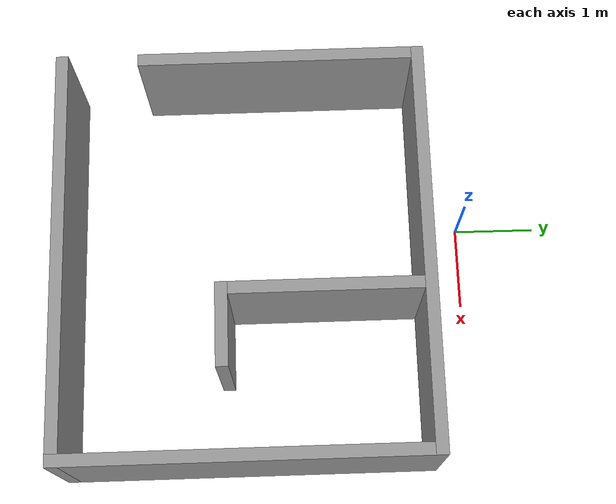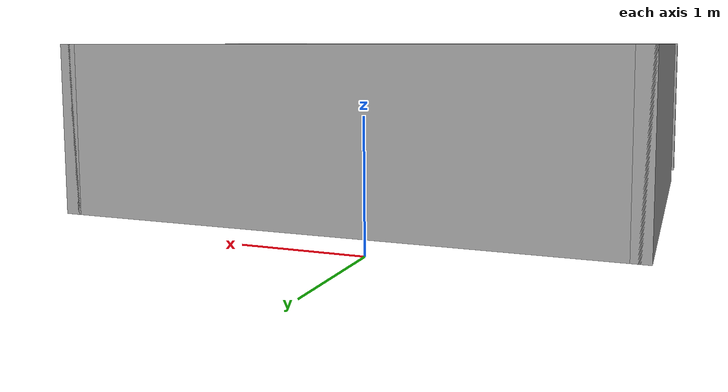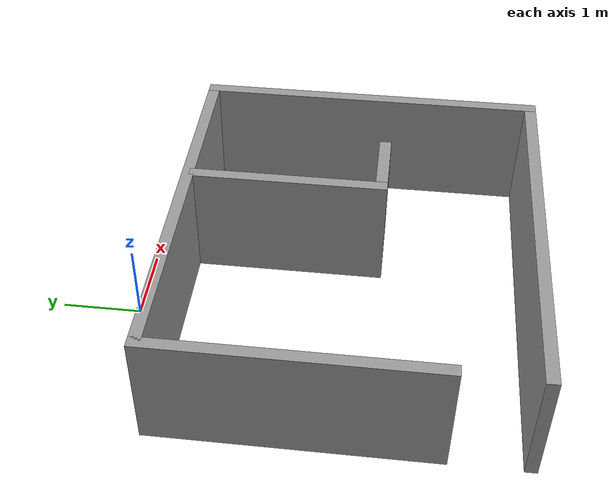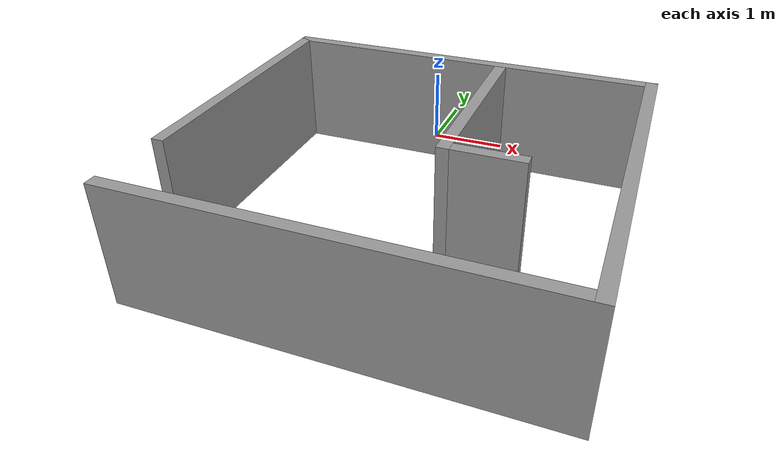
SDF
<?xml version='1.0'?>
<sdf version='1.7'>
  <model name='small_room'>
    <pose>0.565 -2.4725 0 0 -0 0</pose>
    <link name='Wall_0'>
      <collision name='Wall_0_Collision'>
        <geometry>
          <box>
            <size>3.5 0.15 1.5</size>
          </box>
        </geometry>
        <pose>0 0 0.75 0 -0 0</pose>
      </collision>
      <visual name='Wall_0_Visual'>
        <pose>0 0 0.75 0 -0 0</pose>
        <geometry>
          <box>
            <size>3.5 0.15 1.5</size>
          </box>
        </geometry>
        <material>
          <script>
            <uri>file://media/materials/scripts/gazebo.material</uri>
            <name>Gazebo/Grey</name>
          </script>
          <ambient>1 1 1 1</ambient>
        </material>
        <meta>
          <layer>0</layer>
        </meta>
      </visual>
      <pose>-2.425 0.2775 0 0 -0 1.5708</pose>
    </link>
    <link name='Wall_1'>
      <collision name='Wall_1_Collision'>
        <geometry>
          <box>
            <size>5 0.15 1.5</size>
          </box>
        </geometry>
        <pose>0 0 0.75 0 -0 0</pose>
      </collision>
      <visual name='Wall_1_Visual'>
        <pose>0 0 0.75 0 -0 0</pose>
        <geometry>
          <box>
            <size>5 0.15 1.5</size>
          </box>
        </geometry>
        <material>
          <script>
            <uri>file://media/materials/scripts/gazebo.material</uri>
            <name>Gazebo/Grey</name>
          </script>
          <ambient>1 1 1 1</ambient>
        </material>
        <meta>
          <layer>0</layer>
        </meta>
      </visual>
      <pose>-0 1.9525 0 0 -0 0</pose>
    </link>
    <link name='Wall_2'>
      <collision name='Wall_2_Collision'>
        <geometry>
          <box>
            <size>4.5 0.15 1.5</size>
          </box>
        </geometry>
        <pose>0 0 0.75 0 -0 0</pose>
      </collision>
      <visual name='Wall_2_Visual'>
        <pose>0 0 0.75 0 -0 0</pose>
        <geometry>
          <box>
            <size>4.5 0.15 1.5</size>
          </box>
        </geometry>
        <material>
          <script>
            <uri>file://media/materials/scripts/gazebo.material</uri>
            <name>Gazebo/Grey</name>
          </script>
          <ambient>1 1 1 1</ambient>
        </material>
        <meta>
          <layer>0</layer>
        </meta>
      </visual>
      <pose>2.425 -0.2225 0 0 -0 -1.5708</pose>
    </link>
    <link name='Wall_3'>
      <collision name='Wall_3_Collision'>
        <geometry>
          <box>
            <size>5 0.15 1.5</size>
          </box>
        </geometry>
        <pose>0 0 0.75 0 -0 0</pose>
      </collision>
      <visual name='Wall_3_Visual'>
        <pose>0 0 0.75 0 -0 0</pose>
        <geometry>
          <box>
            <size>5 0.15 1.5</size>
          </box>
        </geometry>
        <material>
          <script>
            <uri>file://media/materials/scripts/gazebo.material</uri>
            <name>Gazebo/Grey</name>
          </script>
          <ambient>1 1 1 1</ambient>
        </material>
        <meta>
          <layer>0</layer>
        </meta>
      </visual>
      <pose>-0 -2.3975 0 0 -0 3.14159</pose>
    </link>
    <link name='Wall_5'>
      <collision name='Wall_5_Collision'>
        <geometry>
          <box>
            <size>2.5 0.15 1.5</size>
          </box>
        </geometry>
        <pose>0 0 0.75 0 -0 0</pose>
      </collision>
      <visual name='Wall_5_Visual'>
        <pose>0 0 0.75 0 -0 0</pose>
        <geometry>
          <box>
            <size>2.5 0.15 1.5</size>
          </box>
        </geometry>
        <material>
          <script>
            <uri>file://media/materials/scripts/gazebo.material</uri>
            <name>Gazebo/Grey</name>
          </script>
          <ambient>1 1 1 1</ambient>
        </material>
        <meta>
          <layer>0</layer>
        </meta>
      </visual>
      <pose>0.499 0.6865 0 0 -0 -1.5708</pose>
    </link>
    <link name='Wall_6'>
      <collision name='Wall_6_Collision'>
        <geometry>
          <box>
            <size>1 0.15 1.5</size>
          </box>
        </geometry>
        <pose>0 0 0.75 0 -0 0</pose>
      </collision>
      <visual name='Wall_6_Visual'>
        <pose>0 0 0.75 0 -0 0</pose>
        <geometry>
          <box>
            <size>1 0.15 1.5</size>
          </box>
        </geometry>
        <material>
          <script>
            <uri>file://media/materials/scripts/gazebo.material</uri>
            <name>Gazebo/Grey</name>
          </script>
          <ambient>1 1 1 1</ambient>
        </material>
        <meta>
          <layer>0</layer>
        </meta>
      </visual>
      <pose>0.924 -0.4885 0 0 -0 0</pose>
    </link>
    <static>1</static>
  </model>
</sdf>
